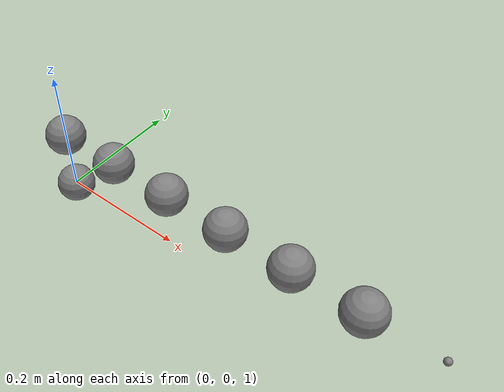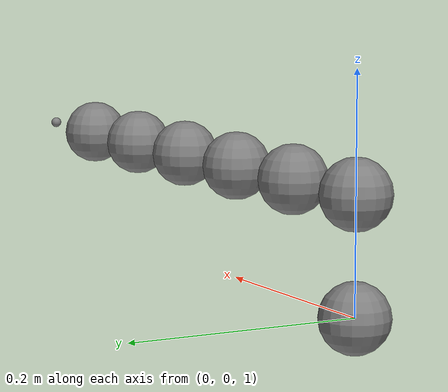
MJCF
<mujoco model="free chain fixture">
  <default><joint damping="1"/><geom type="sphere" size="0.03" mass="0.2"/></default>
  <worldbody>
    <body name="base" pos="0 0 1">
      <freejoint/><geom/>
      <body pos="0 0 0.1"><joint name="joint1" axis="1 0 0"/><geom/>
        <body pos="0.1 0 0"><joint name="joint2" axis="0 1 0"/><geom/>
          <body pos="0.1 0 0"><joint name="joint3" axis="0 0 1"/><geom/>
            <body pos="0.1 0 0"><joint name="joint4" axis="1 0 0"/><geom/>
              <body pos="0.1 0 0"><joint name="joint5" axis="0 1 0"/><geom/>
                <body pos="0.1 0 0"><joint name="joint6" axis="0 0 1"/><geom/>
                  <site name="endpoint" pos="0.1 0 0"/>
                </body>
              </body>
            </body>
          </body>
        </body>
      </body>
    </body>
  </worldbody>
  <actuator>
    <motor joint="joint1"/><motor joint="joint2"/><motor joint="joint3"/>
    <motor joint="joint4"/><motor joint="joint5"/><motor joint="joint6"/>
  </actuator>
  <keyframe><key name="home" qpos="0 0 1 1 0 0 0 0 0 0 0 0 0"/></keyframe>
</mujoco>
